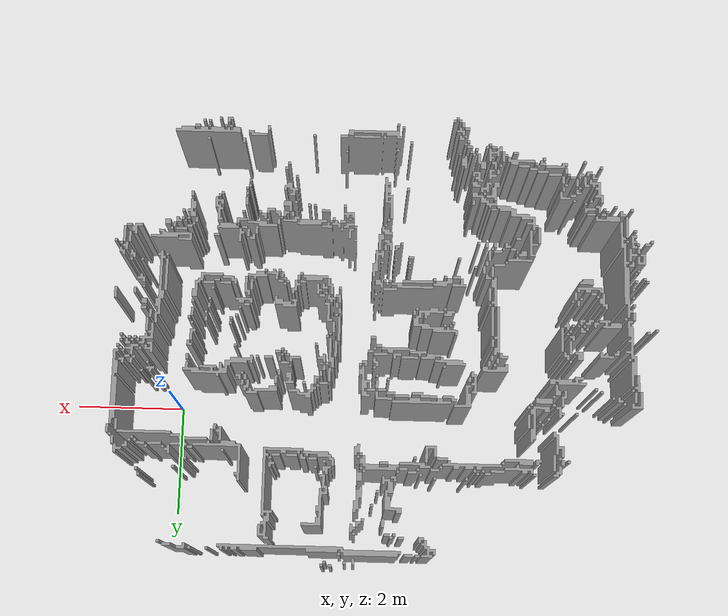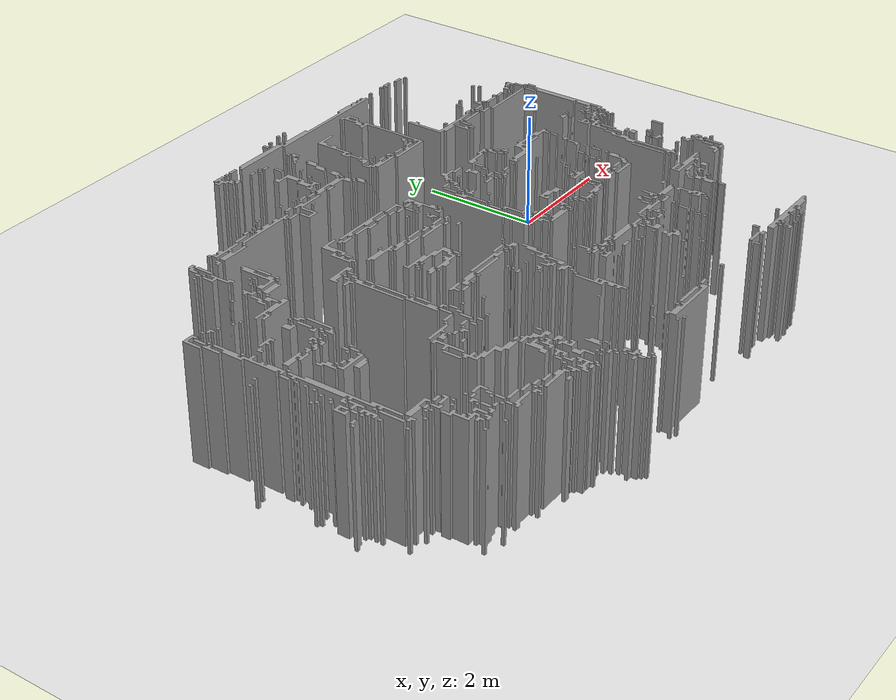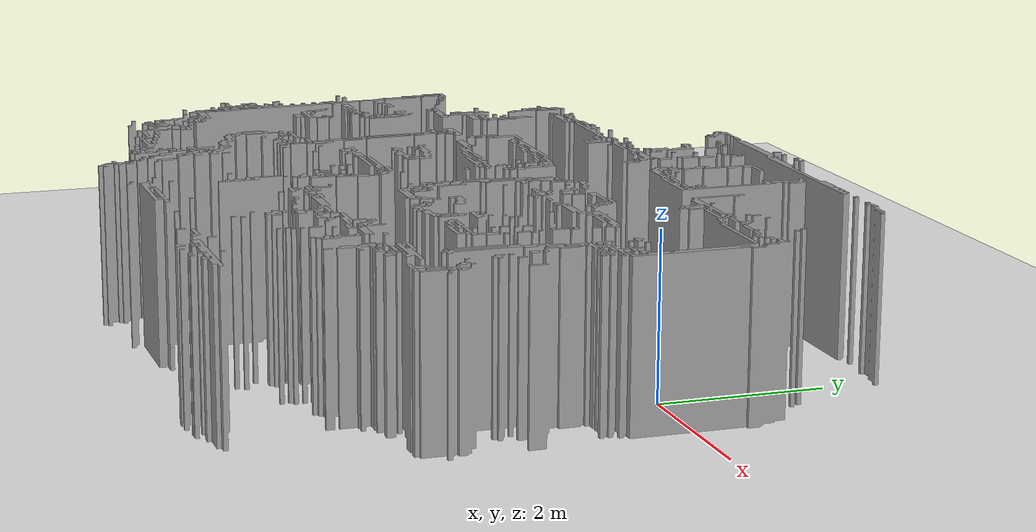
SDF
<sdf version="1.6">
 <world name="default">
  <light name="sun" type="directional">
   <pose>0 0 10 0 -0 0</pose>
   <diffuse>0.8 0.8 0.8 1</diffuse>
   <specular>0.2 0.2 0.2 1</specular>
   <attenuation>
    <range>1000</range>
    <constant>0.9</constant>
    <linear>0.01</linear>
    <quadratic>0.001</quadratic>
   </attenuation>
   <direction>-0.5 0.1 -0.9</direction>
  </light>
  <model name="ground_plane">
   <static>1</static>
   <link name="link">
    <collision name="collision">
     <geometry><plane><normal>0 0 1</normal><size>100 100</size></plane></geometry>
     <surface>
      <contact><collide_bitmask>65535</collide_bitmask></contact>
      <friction><ode><mu>100</mu><mu2>50</mu2></ode></friction>
     </surface>
    </collision>
    <visual name="visual">
     <cast_shadows>0</cast_shadows>
     <geometry><plane><normal>0 0 1</normal><size>100 100</size></plane></geometry>
     <material>
      <script><uri>file://media/materials/scripts/gazebo.material</uri><name>Gazebo/White</name></script>
     </material>
    </visual>
   </link>
  </model>
  <gravity>0 0 -9.8</gravity>
  <magnetic_field>6e-06 2.3e-05 -4.2e-05</magnetic_field>
  <atmosphere type="adiabatic"/>
  <physics name="default_physics" default="0" type="ode">
   <max_step_size>0.001</max_step_size>
   <real_time_factor>1</real_time_factor>
   <real_time_update_rate>1000</real_time_update_rate>
  </physics>
  <scene><ambient>0.4 0.4 0.4 1</ambient><background>0.7 0.7 0.7 1</background><shadows>1</shadows></scene>
  <spherical_coordinates>
   <surface_model>EARTH_WGS84</surface_model>
   <latitude_deg>0</latitude_deg>
   <longitude_deg>0</longitude_deg>
   <elevation>0</elevation>
   <heading_deg>0</heading_deg>
  </spherical_coordinates>
  <include><uri>model://map</uri></include>
 </world>
</sdf>

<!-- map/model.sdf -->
<sdf version='1.6'>
  <model name="map">
    <link name="link">
      <inertial>
        <mass>15</mass>
        <inertia>
          <ixx>0.166667</ixx>
          <ixy>0.0</ixy>
          <ixz>0.0</ixz>
          <iyy>0.166667</iyy>
          <iyz>0.0</iyz>
          <izz>0.166667</izz>
        </inertia>
      </inertial>
      <gravity>1</gravity>
      <self_collide>0</self_collide>
      <kinematic>0</kinematic>
      <enable_wind>0</enable_wind>
      <collision name="collision">
        <pose>0 0 0 0 0 0</pose>
        <laser_retro>0</laser_retro>
        <max_contacts>10</max_contacts>
        <geometry>
          <mesh>
            <uri>model://map/meshes/map.stl</uri>
          </mesh>
        </geometry>
        <surface>
          <friction>
            <ode>
              <mu>1</mu>
              <mu2>1</mu2>
              <fdir1>0 0 0</fdir1>
              <slip1>0</slip1>
              <slip2>0</slip2>
            </ode>
            <torsional>
              <coefficient>1</coefficient>
              <patch_radius>0</patch_radius>
              <surface_radius>0</surface_radius>
              <use_patch_radius>1</use_patch_radius>
              <ode>
                <slip>0</slip>
              </ode>
            </torsional>
          </friction>
          <bounce>
            <restitution_coefficient>0</restitution_coefficient>
            <threshold>1e+06</threshold>
          </bounce>
          <contact>
            <collide_without_contact>0</collide_without_contact>
            <collide_without_contact_bitmask>1</collide_without_contact_bitmask>
            <collide_bitmask>1</collide_bitmask>
            <ode>
              <soft_cfm>0</soft_cfm>
              <soft_erp>0.2</soft_erp>
              <kp>1e+13</kp>
              <kd>1</kd>
              <max_vel>0.01</max_vel>
              <min_depth>0</min_depth>
            </ode>
            <bullet>
              <split_impulse>1</split_impulse>
              <split_impulse_penetration_threshold>-0.01</split_impulse_penetration_threshold>
              <soft_cfm>0</soft_cfm>
              <soft_erp>0.2</soft_erp>
              <kp>1e+13</kp>
              <kd>1</kd>
            </bullet>
          </contact>
        </surface>
      </collision>
      <visual name="visual">
        <pose>0 0 0 0 0 0</pose>
        <geometry>
          <mesh>
            <uri>model://map/meshes/map.stl</uri>
          </mesh>
        </geometry>
        <material>
          <lighting>1</lighting>
          <script>
            <uri>file://media/materials/scripts/gazebo.material</uri>
            <name>Gazebo/Grey</name>
          </script>
          <shader type='pixel'>
            <normal_map>__default__</normal_map>
          </shader>
          <ambient>0.3 0.3 0.3 1</ambient>
          <diffuse>0.7 0.7 0.7 1</diffuse>
          <specular>0.01 0.01 0.01 1</specular>
          <emissive>0 0 0 1</emissive>
        </material>
        <transparency>0</transparency>
        <cast_shadows>1</cast_shadows>
      </visual>
    </link>
    <static>1</static>
  </model>
</sdf>
